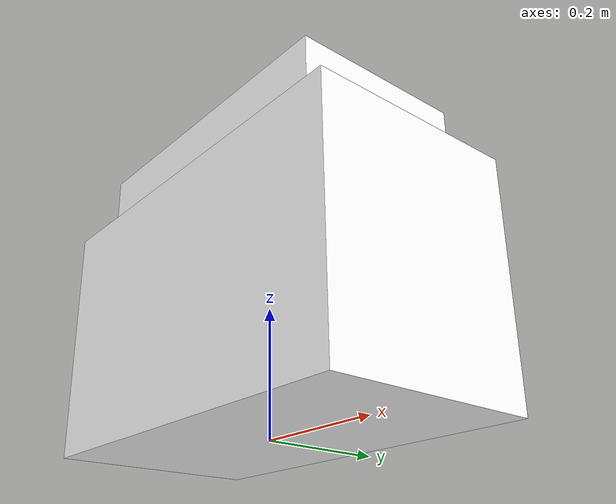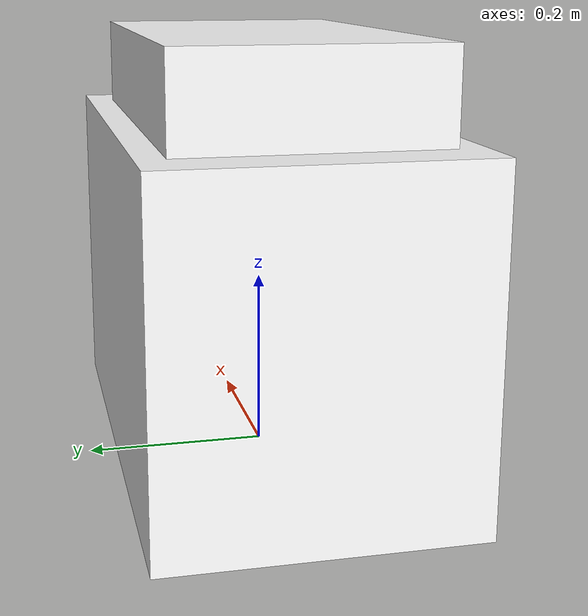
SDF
<?xml version="1.0"?>
<sdf version="1.10">
  <model name="toolbox">
    <static>true</static>
      <link name="body">
        <collision name="chest_col"><pose>0 0 0.19 0 0 0</pose>
          <geometry><box><size>0.62 0.34 0.38</size></box></geometry></collision>
        <visual name="chest_vis"><pose>0 0 0.19 0 0 0</pose>
          <geometry><box><size>0.62 0.34 0.38</size></box></geometry>
          <material>
          <diffuse>1 1 1 1</diffuse>
          <specular>0.15 0.15 0.15 1</specular>
          <pbr><metal>
            <albedo_map>model://slam_assets/materials/textures/metal_panel.png</albedo_map>
            <roughness>0.85</roughness><metalness>0.0</metalness>
          </metal></pbr>
        </material>
        </visual>
        <collision name="tray_col"><pose>0 0 0.43 0 0 0</pose>
          <geometry><box><size>0.50 0.28 0.10</size></box></geometry></collision>
        <visual name="tray_vis"><pose>0 0 0.43 0 0 0</pose>
          <geometry><box><size>0.50 0.28 0.10</size></box></geometry>
          <material>
          <diffuse>1 1 1 1</diffuse>
          <specular>0.15 0.15 0.15 1</specular>
          <pbr><metal>
            <albedo_map>model://slam_assets/materials/textures/metal_brushed.png</albedo_map>
            <roughness>0.85</roughness><metalness>0.0</metalness>
          </metal></pbr>
        </material>
        </visual>
      </link>
  </model>
</sdf>
